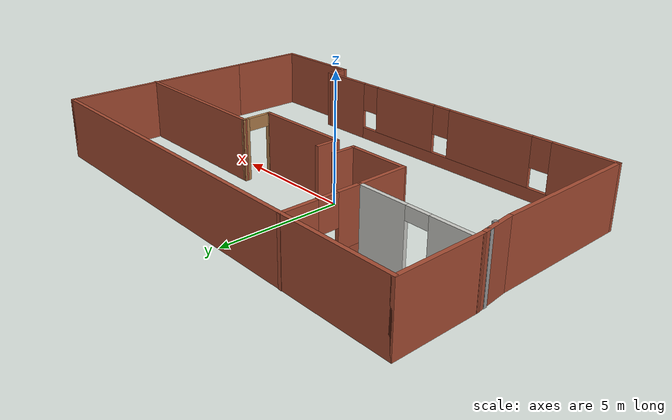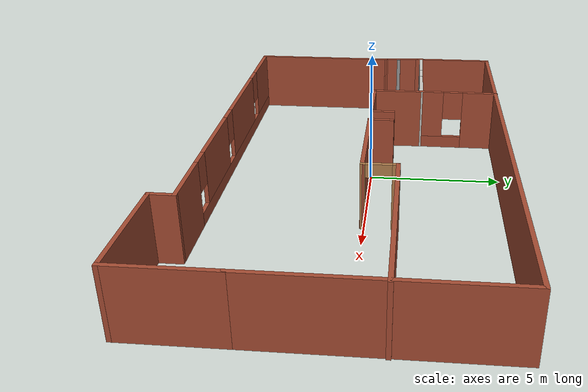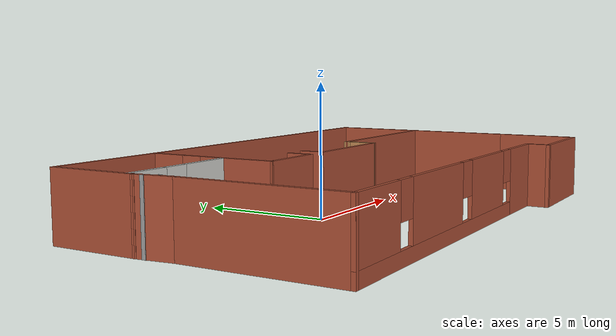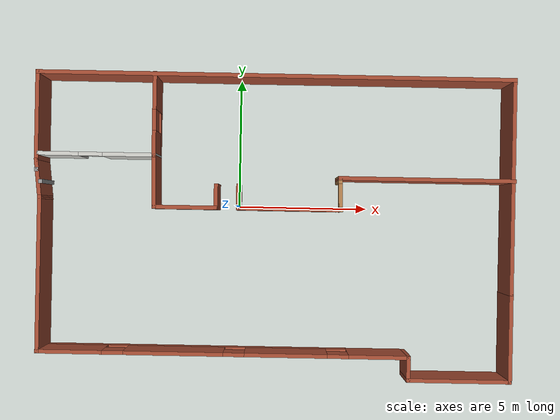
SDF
<?xml version='1.0'?>
<sdf version='1.6'>
  <model name='my_building_editor'>
    <pose frame=''>1.38565 -0.737825 0 0 -0 0</pose>
    <link name='Wall_10'>
      <collision name='Wall_10_Collision'>
        <geometry>
          <box>
            <size>3.5 0.15 2.5</size>
          </box>
        </geometry>
        <pose frame=''>0 0 1.25 0 -0 0</pose>
      </collision>
      <visual name='Wall_10_Visual'>
        <pose frame=''>0 0 1.25 0 -0 0</pose>
        <geometry>
          <box>
            <size>3.5 0.15 2.5</size>
          </box>
        </geometry>
        <material>
          <script>
            <uri>file://media/materials/scripts/gazebo.material</uri>
            <name>Gazebo/Bricks</name>
          </script>
          <ambient>1 1 1 1</ambient>
        </material>
        <meta>
          <layer>0</layer>
        </meta>
      </visual>
      <pose frame=''>9.0299 -4.05736 0 0 0 -1.5708</pose>
    </link>
    <link name='Wall_11'>
      <collision name='Wall_11_Collision'>
        <geometry>
          <box>
            <size>4 0.15 2.5</size>
          </box>
        </geometry>
        <pose frame=''>0 0 1.25 0 -0 0</pose>
      </collision>
      <visual name='Wall_11_Visual'>
        <pose frame=''>0 0 1.25 0 -0 0</pose>
        <geometry>
          <box>
            <size>4 0.15 2.5</size>
          </box>
        </geometry>
        <material>
          <script>
            <uri>file://media/materials/scripts/gazebo.material</uri>
            <name>Gazebo/Bricks</name>
          </script>
          <ambient>1 1 1 1</ambient>
        </material>
        <meta>
          <layer>0</layer>
        </meta>
      </visual>
      <pose frame=''>7.1049 -5.73236 0 0 -0 3.14159</pose>
    </link>
    <link name='Wall_12'>
      <collision name='Wall_12_Collision'>
        <geometry>
          <box>
            <size>1 0.15 2.5</size>
          </box>
        </geometry>
        <pose frame=''>0 0 1.25 0 -0 0</pose>
      </collision>
      <visual name='Wall_12_Visual'>
        <pose frame=''>0 0 1.25 0 -0 0</pose>
        <geometry>
          <box>
            <size>1 0.15 2.5</size>
          </box>
        </geometry>
        <material>
          <script>
            <uri>file://media/materials/scripts/gazebo.material</uri>
            <name>Gazebo/Bricks</name>
          </script>
          <ambient>1 1 1 1</ambient>
        </material>
        <meta>
          <layer>0</layer>
        </meta>
      </visual>
      <pose frame=''>5.1799 -5.30736 0 0 -0 1.5708</pose>
    </link>
    <link name='Wall_13'>
      <pose frame=''>-1.8701 -4.88236 0 0 -0 3.14159</pose>
      <visual name='Wall_13_Visual_0'>
        <pose frame=''>-5.94799 0 1.25 0 -0 0</pose>
        <geometry>
          <box>
            <size>2.35401 0.15 2.5</size>
          </box>
        </geometry>
        <material>
          <script>
            <uri>file://media/materials/scripts/gazebo.material</uri>
            <name>Gazebo/Bricks</name>
          </script>
          <ambient>1 1 1 1</ambient>
        </material>
        <meta>
          <layer>0</layer>
        </meta>
      </visual>
      <collision name='Wall_13_Collision_0'>
        <geometry>
          <box>
            <size>2.35401 0.15 2.5</size>
          </box>
        </geometry>
        <pose frame=''>-5.94799 0 1.25 0 -0 0</pose>
      </collision>
      <visual name='Wall_13_Visual_1'>
        <pose frame=''>1.17701 0 0.25 0 -0 0</pose>
        <geometry>
          <box>
            <size>11.896 0.15 0.5</size>
          </box>
        </geometry>
        <material>
          <script>
            <uri>file://media/materials/scripts/gazebo.material</uri>
            <name>Gazebo/Bricks</name>
          </script>
          <ambient>1 1 1 1</ambient>
        </material>
        <meta>
          <layer>0</layer>
        </meta>
      </visual>
      <collision name='Wall_13_Collision_1'>
        <geometry>
          <box>
            <size>11.896 0.15 0.5</size>
          </box>
        </geometry>
        <pose frame=''>1.17701 0 0.25 0 -0 0</pose>
      </collision>
      <visual name='Wall_13_Visual_2'>
        <pose frame=''>-2.39099 0 1.5 0 -0 0</pose>
        <geometry>
          <box>
            <size>3.16 0.15 2</size>
          </box>
        </geometry>
        <material>
          <script>
            <uri>file://media/materials/scripts/gazebo.material</uri>
            <name>Gazebo/Bricks</name>
          </script>
          <ambient>1 1 1 1</ambient>
        </material>
        <meta>
          <layer>0</layer>
        </meta>
      </visual>
      <collision name='Wall_13_Collision_2'>
        <geometry>
          <box>
            <size>3.16 0.15 2</size>
          </box>
        </geometry>
        <pose frame=''>-2.39099 0 1.5 0 -0 0</pose>
      </collision>
      <visual name='Wall_13_Visual_3'>
        <pose frame=''>1.88902 0 1.5 0 -0 0</pose>
        <geometry>
          <box>
            <size>3.8 0.15 2</size>
          </box>
        </geometry>
        <material>
          <script>
            <uri>file://media/materials/scripts/gazebo.material</uri>
            <name>Gazebo/Bricks</name>
          </script>
          <ambient>1 1 1 1</ambient>
        </material>
        <meta>
          <layer>0</layer>
        </meta>
      </visual>
      <collision name='Wall_13_Collision_3'>
        <geometry>
          <box>
            <size>3.8 0.15 2</size>
          </box>
        </geometry>
        <pose frame=''>1.88902 0 1.5 0 -0 0</pose>
      </collision>
      <visual name='Wall_13_Visual_4'>
        <pose frame=''>5.85701 0 1.5 0 -0 0</pose>
        <geometry>
          <box>
            <size>2.53599 0.15 2</size>
          </box>
        </geometry>
        <material>
          <script>
            <uri>file://media/materials/scripts/gazebo.material</uri>
            <name>Gazebo/Bricks</name>
          </script>
          <ambient>1 1 1 1</ambient>
        </material>
        <meta>
          <layer>0</layer>
        </meta>
      </visual>
      <collision name='Wall_13_Collision_4'>
        <geometry>
          <box>
            <size>2.53599 0.15 2</size>
          </box>
        </geometry>
        <pose frame=''>5.85701 0 1.5 0 -0 0</pose>
      </collision>
      <visual name='Wall_13_Visual_5'>
        <pose frame=''>-4.37099 0 1.9 0 -0 0</pose>
        <geometry>
          <box>
            <size>0.8 0.15 1.2</size>
          </box>
        </geometry>
        <material>
          <script>
            <uri>file://media/materials/scripts/gazebo.material</uri>
            <name>Gazebo/Bricks</name>
          </script>
          <ambient>1 1 1 1</ambient>
        </material>
        <meta>
          <layer>0</layer>
        </meta>
      </visual>
      <collision name='Wall_13_Collision_5'>
        <geometry>
          <box>
            <size>0.8 0.15 1.2</size>
          </box>
        </geometry>
        <pose frame=''>-4.37099 0 1.9 0 -0 0</pose>
      </collision>
      <visual name='Wall_13_Visual_6'>
        <pose frame=''>-0.410985 0 1.9 0 -0 0</pose>
        <geometry>
          <box>
            <size>0.8 0.15 1.2</size>
          </box>
        </geometry>
        <material>
          <script>
            <uri>file://media/materials/scripts/gazebo.material</uri>
            <name>Gazebo/Bricks</name>
          </script>
          <ambient>1 1 1 1</ambient>
        </material>
        <meta>
          <layer>0</layer>
        </meta>
      </visual>
      <collision name='Wall_13_Collision_6'>
        <geometry>
          <box>
            <size>0.8 0.15 1.2</size>
          </box>
        </geometry>
        <pose frame=''>-0.410985 0 1.9 0 -0 0</pose>
      </collision>
      <visual name='Wall_13_Visual_7'>
        <pose frame=''>4.18901 0 1.9 0 -0 0</pose>
        <geometry>
          <box>
            <size>0.8 0.15 1.2</size>
          </box>
        </geometry>
        <material>
          <script>
            <uri>file://media/materials/scripts/gazebo.material</uri>
            <name>Gazebo/Bricks</name>
          </script>
          <ambient>1 1 1 1</ambient>
        </material>
        <meta>
          <layer>0</layer>
        </meta>
      </visual>
      <collision name='Wall_13_Collision_7'>
        <geometry>
          <box>
            <size>0.8 0.15 1.2</size>
          </box>
        </geometry>
        <pose frame=''>4.18901 0 1.9 0 -0 0</pose>
      </collision>
    </link>
    <link name='Wall_14'>
      <collision name='Wall_14_Collision'>
        <geometry>
          <box>
            <size>6 0.15 2.5</size>
          </box>
        </geometry>
        <pose frame=''>0 0 1.25 0 -0 0</pose>
      </collision>
      <visual name='Wall_14_Visual'>
        <pose frame=''>0 0 1.25 0 -0 0</pose>
        <geometry>
          <box>
            <size>6 0.15 2.5</size>
          </box>
        </geometry>
        <material>
          <script>
            <uri>file://media/materials/scripts/gazebo.material</uri>
            <name>Gazebo/Bricks</name>
          </script>
          <ambient>1 1 1 1</ambient>
        </material>
        <meta>
          <layer>0</layer>
        </meta>
      </visual>
      <pose frame=''>-8.9201 -1.95736 0 0 -0 1.5708</pose>
    </link>
    <link name='Wall_16'>
      <collision name='Wall_16_Collision'>
        <geometry>
          <box>
            <size>0.15 0.15 2.5</size>
          </box>
        </geometry>
        <pose frame=''>0 0 1.25 0 -0 0</pose>
      </collision>
      <visual name='Wall_16_Visual'>
        <pose frame=''>0 0 1.25 0 -0 0</pose>
        <geometry>
          <box>
            <size>0.15 0.15 2.5</size>
          </box>
        </geometry>
        <material>
          <script>
            <uri>file://media/materials/scripts/gazebo.material</uri>
            <name>Gazebo/Grey</name>
          </script>
          <ambient>1 1 1 1</ambient>
        </material>
        <meta>
          <layer>0</layer>
        </meta>
      </visual>
      <pose frame=''>-8.88866 1.56764 0 0 -0 0</pose>
    </link>
    <link name='Wall_20'>
      <collision name='Wall_20_Collision'>
        <geometry>
          <box>
            <size>0.15 0.15 2.5</size>
          </box>
        </geometry>
        <pose frame=''>0 0 1.25 0 -0 0</pose>
      </collision>
      <visual name='Wall_20_Visual'>
        <pose frame=''>0 0 1.25 0 -0 0</pose>
        <geometry>
          <box>
            <size>0.15 0.15 2.5</size>
          </box>
        </geometry>
        <material>
          <script>
            <uri>file://media/materials/scripts/gazebo.material</uri>
            <name>Gazebo/Grey</name>
          </script>
          <ambient>1 1 1 1</ambient>
        </material>
        <meta>
          <layer>0</layer>
        </meta>
      </visual>
      <pose frame=''>-9.0501 2.01764 0 0 -0 0</pose>
    </link>
    <link name='Wall_23'>
      <collision name='Wall_23_Collision'>
        <geometry>
          <box>
            <size>1.55801 0.15 2.5</size>
          </box>
        </geometry>
        <pose frame=''>0 0 1.25 0 -0 0</pose>
      </collision>
      <visual name='Wall_23_Visual'>
        <pose frame=''>0 0 1.25 0 -0 0</pose>
        <geometry>
          <box>
            <size>1.55801 0.15 2.5</size>
          </box>
        </geometry>
        <material>
          <script>
            <uri>file://media/materials/scripts/gazebo.material</uri>
            <name>Gazebo/Bricks</name>
          </script>
          <ambient>1 1 1 1</ambient>
        </material>
        <meta>
          <layer>0</layer>
        </meta>
      </visual>
      <pose frame=''>-8.9951 1.66764 0 0 -0 1.67753</pose>
    </link>
    <link name='Wall_25'>
      <pose frame=''>-4.62234 4.18236 0 0 0 -1.5708</pose>
      <visual name='Wall_25_Visual_0'>
        <pose frame=''>-0.906208 0 1.25 0 -0 0</pose>
        <geometry>
          <box>
            <size>1.43758 0.15 2.5</size>
          </box>
        </geometry>
        <material>
          <script>
            <uri>file://media/materials/scripts/gazebo.material</uri>
            <name>Gazebo/Bricks</name>
          </script>
          <ambient>1 1 1 1</ambient>
        </material>
        <meta>
          <layer>0</layer>
        </meta>
      </visual>
      <collision name='Wall_25_Collision_0'>
        <geometry>
          <box>
            <size>1.43758 0.15 2.5</size>
          </box>
        </geometry>
        <pose frame=''>-0.906208 0 1.25 0 -0 0</pose>
      </collision>
      <visual name='Wall_25_Visual_1'>
        <pose frame=''>0.718792 0 0.25 0 -0 0</pose>
        <geometry>
          <box>
            <size>1.81242 0.15 0.5</size>
          </box>
        </geometry>
        <material>
          <script>
            <uri>file://media/materials/scripts/gazebo.material</uri>
            <name>Gazebo/Bricks</name>
          </script>
          <ambient>1 1 1 1</ambient>
        </material>
        <meta>
          <layer>0</layer>
        </meta>
      </visual>
      <collision name='Wall_25_Collision_1'>
        <geometry>
          <box>
            <size>1.81242 0.15 0.5</size>
          </box>
        </geometry>
        <pose frame=''>0.718792 0 0.25 0 -0 0</pose>
      </collision>
      <visual name='Wall_25_Visual_2'>
        <pose frame=''>1.11879 0 1.5 0 -0 0</pose>
        <geometry>
          <box>
            <size>1.01242 0.15 2</size>
          </box>
        </geometry>
        <material>
          <script>
            <uri>file://media/materials/scripts/gazebo.material</uri>
            <name>Gazebo/Bricks</name>
          </script>
          <ambient>1 1 1 1</ambient>
        </material>
        <meta>
          <layer>0</layer>
        </meta>
      </visual>
      <collision name='Wall_25_Collision_2'>
        <geometry>
          <box>
            <size>1.01242 0.15 2</size>
          </box>
        </geometry>
        <pose frame=''>1.11879 0 1.5 0 -0 0</pose>
      </collision>
      <visual name='Wall_25_Visual_3'>
        <pose frame=''>0.212584 0 1.9 0 -0 0</pose>
        <geometry>
          <box>
            <size>0.8 0.15 1.2</size>
          </box>
        </geometry>
        <material>
          <script>
            <uri>file://media/materials/scripts/gazebo.material</uri>
            <name>Gazebo/Bricks</name>
          </script>
          <ambient>1 1 1 1</ambient>
        </material>
        <meta>
          <layer>0</layer>
        </meta>
      </visual>
      <collision name='Wall_25_Collision_3'>
        <geometry>
          <box>
            <size>0.8 0.15 1.2</size>
          </box>
        </geometry>
        <pose frame=''>0.212584 0 1.9 0 -0 0</pose>
      </collision>
    </link>
    <link name='Wall_27'>
      <pose frame=''>-6.79734 2.63236 0 0 -0 3.14159</pose>
      <visual name='Wall_27_Visual_0'>
        <pose frame=''>-1.2396 0 1.25 0 -0 0</pose>
        <geometry>
          <box>
            <size>2.0208 0.15 2.5</size>
          </box>
        </geometry>
        <material>
          <script>
            <uri>file://media/materials/scripts/gazebo.material</uri>
            <name>Gazebo/CeilingTiled</name>
          </script>
          <ambient>1 0 0 1</ambient>
        </material>
        <meta>
          <layer>0</layer>
        </meta>
      </visual>
      <collision name='Wall_27_Collision_0'>
        <geometry>
          <box>
            <size>2.0208 0.15 2.5</size>
          </box>
        </geometry>
        <pose frame=''>-1.2396 0 1.25 0 -0 0</pose>
      </collision>
      <visual name='Wall_27_Visual_1'>
        <pose frame=''>1.4604 0 1.25 0 -0 0</pose>
        <geometry>
          <box>
            <size>1.5792 0.15 2.5</size>
          </box>
        </geometry>
        <material>
          <script>
            <uri>file://media/materials/scripts/gazebo.material</uri>
            <name>Gazebo/CeilingTiled</name>
          </script>
          <ambient>1 0 0 1</ambient>
        </material>
        <meta>
          <layer>0</layer>
        </meta>
      </visual>
      <collision name='Wall_27_Collision_1'>
        <geometry>
          <box>
            <size>1.5792 0.15 2.5</size>
          </box>
        </geometry>
        <pose frame=''>1.4604 0 1.25 0 -0 0</pose>
      </collision>
      <visual name='Wall_27_Visual_2'>
        <pose frame=''>0.220803 0 2.25 0 -0 0</pose>
        <geometry>
          <box>
            <size>0.9 0.15 0.5</size>
          </box>
        </geometry>
        <material>
          <script>
            <uri>file://media/materials/scripts/gazebo.material</uri>
            <name>Gazebo/CeilingTiled</name>
          </script>
          <ambient>1 0 0 1</ambient>
        </material>
        <meta>
          <layer>0</layer>
        </meta>
      </visual>
      <collision name='Wall_27_Collision_2'>
        <geometry>
          <box>
            <size>0.9 0.15 0.5</size>
          </box>
        </geometry>
        <pose frame=''>0.220803 0 2.25 0 -0 0</pose>
      </collision>
    </link>
    <link name='Wall_30'>
      <collision name='Wall_30_Collision'>
        <geometry>
          <box>
            <size>2.11039 0.15 2.5</size>
          </box>
        </geometry>
        <pose frame=''>0 0 1.25 0 -0 0</pose>
      </collision>
      <visual name='Wall_30_Visual'>
        <pose frame=''>0 0 1.25 0 -0 0</pose>
        <geometry>
          <box>
            <size>2.11039 0.15 2.5</size>
          </box>
        </geometry>
        <material>
          <script>
            <uri>file://media/materials/scripts/gazebo.material</uri>
            <name>Gazebo/Bricks</name>
          </script>
          <ambient>1 1 1 1</ambient>
        </material>
        <meta>
          <layer>0</layer>
        </meta>
      </visual>
      <pose frame=''>-4.60485 1.65232 0 0 0 -1.55295</pose>
    </link>
    <link name='Wall_32'>
      <pose frame=''>2.49515 1.27732 0 0 -0 1.5997</pose>
      <visual name='Wall_32_Visual_0'>
        <pose frame=''>-0.587147 0 1.25 0 -0 0</pose>
        <geometry>
          <box>
            <size>0.186291 0.15 2.5</size>
          </box>
        </geometry>
        <material>
          <script>
            <uri>file://media/materials/scripts/gazebo.material</uri>
            <name>Gazebo/Wood</name>
          </script>
          <ambient>1 1 1 1</ambient>
        </material>
        <meta>
          <layer>0</layer>
        </meta>
      </visual>
      <collision name='Wall_32_Collision_0'>
        <geometry>
          <box>
            <size>0.186291 0.15 2.5</size>
          </box>
        </geometry>
        <pose frame=''>-0.587147 0 1.25 0 -0 0</pose>
      </collision>
      <visual name='Wall_32_Visual_1'>
        <pose frame=''>0.543145 0 1.25 0 -0 0</pose>
        <geometry>
          <box>
            <size>0.274294 0.15 2.5</size>
          </box>
        </geometry>
        <material>
          <script>
            <uri>file://media/materials/scripts/gazebo.material</uri>
            <name>Gazebo/Wood</name>
          </script>
          <ambient>1 1 1 1</ambient>
        </material>
        <meta>
          <layer>0</layer>
        </meta>
      </visual>
      <collision name='Wall_32_Collision_1'>
        <geometry>
          <box>
            <size>0.274294 0.15 2.5</size>
          </box>
        </geometry>
        <pose frame=''>0.543145 0 1.25 0 -0 0</pose>
      </collision>
      <visual name='Wall_32_Visual_2'>
        <pose frame=''>-0.044002 0 2.25 0 -0 0</pose>
        <geometry>
          <box>
            <size>0.9 0.15 0.5</size>
          </box>
        </geometry>
        <material>
          <script>
            <uri>file://media/materials/scripts/gazebo.material</uri>
            <name>Gazebo/Wood</name>
          </script>
          <ambient>1 1 1 1</ambient>
        </material>
        <meta>
          <layer>0</layer>
        </meta>
      </visual>
      <collision name='Wall_32_Collision_2'>
        <geometry>
          <box>
            <size>0.9 0.15 0.5</size>
          </box>
        </geometry>
        <pose frame=''>-0.044002 0 2.25 0 -0 0</pose>
      </collision>
    </link>
    <link name='Wall_35'>
      <collision name='Wall_35_Collision'>
        <geometry>
          <box>
            <size>6.75 0.15 2.5</size>
          </box>
        </geometry>
        <pose frame=''>0 0 1.25 0 -0 0</pose>
      </collision>
      <visual name='Wall_35_Visual'>
        <pose frame=''>0 0 1.25 0 -0 0</pose>
        <geometry>
          <box>
            <size>6.75 0.15 2.5</size>
          </box>
        </geometry>
        <material>
          <script>
            <uri>file://media/materials/scripts/gazebo.material</uri>
            <name>Gazebo/Bricks</name>
          </script>
          <ambient>1 1 1 1</ambient>
        </material>
        <meta>
          <layer>0</layer>
        </meta>
      </visual>
      <pose frame=''>5.77766 1.88236 0 0 -0 0</pose>
    </link>
    <link name='Wall_4'>
      <collision name='Wall_4_Collision'>
        <geometry>
          <box>
            <size>3.5 0.15 2.5</size>
          </box>
        </geometry>
        <pose frame=''>0 0 1.25 0 -0 0</pose>
      </collision>
      <visual name='Wall_4_Visual'>
        <pose frame=''>0 0 1.25 0 -0 0</pose>
        <geometry>
          <box>
            <size>3.5 0.15 2.5</size>
          </box>
        </geometry>
        <material>
          <script>
            <uri>file://media/materials/scripts/gazebo.material</uri>
            <name>Gazebo/Bricks</name>
          </script>
          <ambient>1 1 1 1</ambient>
        </material>
        <meta>
          <layer>0</layer>
        </meta>
      </visual>
      <pose frame=''>-9.0701 4.04264 0 0 -0 1.5708</pose>
    </link>
    <link name='Wall_41'>
      <collision name='Wall_41_Collision'>
        <geometry>
          <box>
            <size>2.5 0.15 2.5</size>
          </box>
        </geometry>
        <pose frame=''>0 0 1.25 0 -0 0</pose>
      </collision>
      <visual name='Wall_41_Visual'>
        <pose frame=''>0 0 1.25 0 -0 0</pose>
        <geometry>
          <box>
            <size>2.5 0.15 2.5</size>
          </box>
        </geometry>
        <material>
          <script>
            <uri>file://media/materials/scripts/gazebo.material</uri>
            <name>Gazebo/Bricks</name>
          </script>
          <ambient>1 1 1 1</ambient>
        </material>
        <meta>
          <layer>0</layer>
        </meta>
      </visual>
      <pose frame=''>-3.41236 0.672278 0 0 -0 0</pose>
    </link>
    <link name='Wall_42'>
      <collision name='Wall_42_Collision'>
        <geometry>
          <box>
            <size>1 0.15 2.5</size>
          </box>
        </geometry>
        <pose frame=''>0 0 1.25 0 -0 0</pose>
      </collision>
      <visual name='Wall_42_Visual'>
        <pose frame=''>0 0 1.25 0 -0 0</pose>
        <geometry>
          <box>
            <size>1 0.15 2.5</size>
          </box>
        </geometry>
        <material>
          <script>
            <uri>file://media/materials/scripts/gazebo.material</uri>
            <name>Gazebo/Bricks</name>
          </script>
          <ambient>1 1 1 1</ambient>
        </material>
        <meta>
          <layer>0</layer>
        </meta>
      </visual>
      <pose frame=''>-2.23736 1.09728 0 0 -0 1.5708</pose>
    </link>
    <link name='Wall_44'>
      <collision name='Wall_44_Collision'>
        <geometry>
          <box>
            <size>1 0.15 2.5</size>
          </box>
        </geometry>
        <pose frame=''>0 0 1.25 0 -0 0</pose>
      </collision>
      <visual name='Wall_44_Visual'>
        <pose frame=''>0 0 1.25 0 -0 0</pose>
        <geometry>
          <box>
            <size>1 0.15 2.5</size>
          </box>
        </geometry>
        <material>
          <script>
            <uri>file://media/materials/scripts/gazebo.material</uri>
            <name>Gazebo/Bricks</name>
          </script>
          <ambient>1 1 1 1</ambient>
        </material>
        <meta>
          <layer>0</layer>
        </meta>
      </visual>
      <pose frame=''>-1.38736 1.09728 0 0 0 -1.5708</pose>
    </link>
    <link name='Wall_45'>
      <collision name='Wall_45_Collision'>
        <geometry>
          <box>
            <size>4.05 0.15 2.5</size>
          </box>
        </geometry>
        <pose frame=''>0 0 1.25 0 -0 0</pose>
      </collision>
      <visual name='Wall_45_Visual'>
        <pose frame=''>0 0 1.25 0 -0 0</pose>
        <geometry>
          <box>
            <size>4.05 0.15 2.5</size>
          </box>
        </geometry>
        <material>
          <script>
            <uri>file://media/materials/scripts/gazebo.material</uri>
            <name>Gazebo/Bricks</name>
          </script>
          <ambient>1 1 1 1</ambient>
        </material>
        <meta>
          <layer>0</layer>
        </meta>
      </visual>
      <pose frame=''>0.56264 0.672278 0 0 -0 0</pose>
    </link>
    <link name='Wall_5'>
      <collision name='Wall_5_Collision'>
        <geometry>
          <box>
            <size>18.25 0.15 2.5</size>
          </box>
        </geometry>
        <pose frame=''>0 0 1.25 0 -0 0</pose>
      </collision>
      <visual name='Wall_5_Visual'>
        <pose frame=''>0 0 1.25 0 -0 0</pose>
        <geometry>
          <box>
            <size>18.25 0.15 2.5</size>
          </box>
        </geometry>
        <material>
          <script>
            <uri>file://media/materials/scripts/gazebo.material</uri>
            <name>Gazebo/Bricks</name>
          </script>
          <ambient>1 1 1 1</ambient>
        </material>
        <meta>
          <layer>0</layer>
        </meta>
      </visual>
      <pose frame=''>-0.020097 5.71764 0 0 -0 0</pose>
    </link>
    <link name='Wall_8'>
      <collision name='Wall_8_Collision'>
        <geometry>
          <box>
            <size>8.25 0.15 2.5</size>
          </box>
        </geometry>
        <pose frame=''>0 0 1.25 0 -0 0</pose>
      </collision>
      <visual name='Wall_8_Visual'>
        <pose frame=''>0 0 1.25 0 -0 0</pose>
        <geometry>
          <box>
            <size>8.25 0.15 2.5</size>
          </box>
        </geometry>
        <material>
          <script>
            <uri>file://media/materials/scripts/gazebo.material</uri>
            <name>Gazebo/Bricks</name>
          </script>
          <ambient>1 1 1 1</ambient>
        </material>
        <meta>
          <layer>0</layer>
        </meta>
      </visual>
      <pose frame=''>9.0299 1.66764 0 0 0 -1.5708</pose>
    </link>
    <static>1</static>
  </model>
</sdf>
